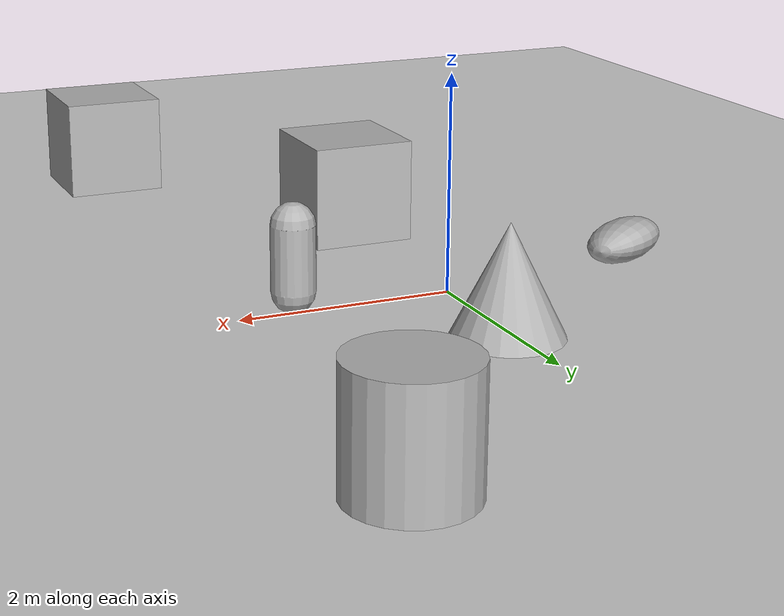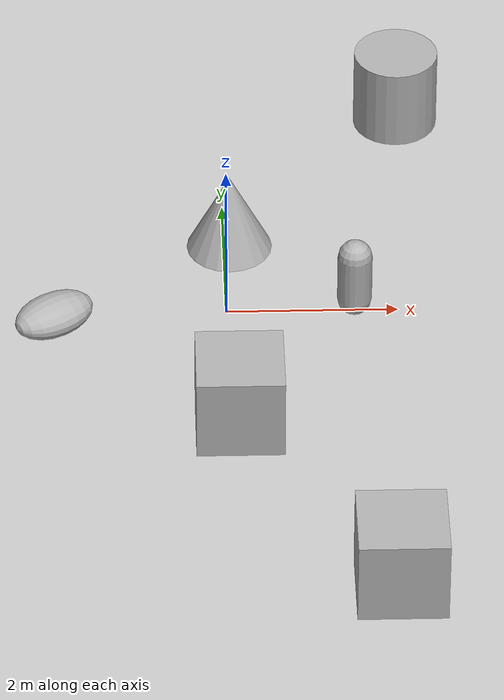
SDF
<sdf version="1.10">
 <world name="empty">
  <physics name="1ms" type="ignored">
   <max_step_size>0.001</max_step_size>
   <real_time_factor>1</real_time_factor>
   <real_time_update_rate>1000</real_time_update_rate>
  </physics>
  <plugin name="gz::sim::systems::Physics" filename="gz-sim-physics-system"/>
  <plugin name="gz::sim::systems::UserCommands" filename="gz-sim-user-commands-system"/>
  <plugin name="gz::sim::systems::SceneBroadcaster" filename="gz-sim-scene-broadcaster-system"/>
  <plugin name="gz::sim::systems::Sensors" filename="gz-sim-sensors-system">
   <render_engine>ogre2</render_engine>
  </plugin>
  <plugin name="gz::sim::systems::Contact" filename="gz-sim-contact-system"/>
  <gravity>0 0 -9.8000000000000007</gravity>
  <magnetic_field>5.5644999999999998e-06 2.2875799999999999e-05 -4.2388400000000002e-05</magnetic_field>
  <atmosphere type="adiabatic"/>
  <scene>
   <ambient>0.400000006 0.400000006 0.400000006 1</ambient>
   <background>0.699999988 0.699999988 0.699999988 1</background>
   <shadows>true</shadows>
  </scene>
  <model name="ground_plane">
   <static>true</static>
   <link name="link">
    <collision name="collision">
     <geometry><plane><normal>0 0 1</normal><size>100 100</size></plane></geometry>
    </collision>
    <visual name="visual">
     <geometry><plane><normal>0 0 1</normal><size>100 100</size></plane></geometry>
     <material>
      <ambient>0.800000012 0.800000012 0.800000012 1</ambient>
      <diffuse>0.800000012 0.800000012 0.800000012 1</diffuse>
      <specular>0.800000012 0.800000012 0.800000012 1</specular>
     </material>
    </visual>
    <inertial>
     <mass>1</mass>
     <inertia><ixx>1</ixx><ixy>0</ixy><ixz>0</ixz><iyy>1</iyy><iyz>0</iyz><izz>1</izz></inertia>
    </inertial>
   </link>
  </model>
  <model name="box">
   <pose>1.8029219467110664 -4.9402323017846799 0.49999999980497606 1.0048033485058014e-21 -2.4640853465547739e-21 -3.9210766489770922e-22</pose>
   <link name="box_link">
    <inertial>
     <inertia><ixx>0.16666</ixx><ixy>0</ixy><ixz>0</ixz><iyy>0.16666</iyy><iyz>0</iyz><izz>0.16666</izz></inertia>
     <mass>1</mass>
    </inertial>
    <collision name="box_collision"><geometry><box><size>1 1 1</size></box></geometry></collision>
    <visual name="box_visual">
     <geometry><box><size>1 1 1</size></box></geometry>
     <material>
      <ambient>0.300000012 0.300000012 0.300000012 1</ambient>
      <diffuse>0.699999988 0.699999988 0.699999988 1</diffuse>
      <specular>1 1 1 1</specular>
     </material>
    </visual>
   </link>
   <static>false</static>
  </model>
  <model name="cylinder">
   <pose>2.1278173043812618 3.7029515542140965 0.49999943207967634 2.5210160480119534e-20 1.5537065464925922e-20 -8.8626556358186986e-21</pose>
   <link name="cylinder_link">
    <inertial>
     <inertia>
      <ixx>0.14580000000000001</ixx>
      <ixy>0</ixy>
      <ixz>0</ixz>
      <iyy>0.14580000000000001</iyy>
      <iyz>0</iyz>
      <izz>0.125</izz>
     </inertia>
     <mass>1</mass>
    </inertial>
    <collision name="cylinder_collision">
     <geometry><cylinder><radius>0.5</radius><length>1</length></cylinder></geometry>
    </collision>
    <visual name="cylinder_visual">
     <geometry><cylinder><radius>0.5</radius><length>1</length></cylinder></geometry>
     <material>
      <ambient>0.300000012 0.300000012 0.300000012 1</ambient>
      <diffuse>0.699999988 0.699999988 0.699999988 1</diffuse>
      <specular>1 1 1 1</specular>
     </material>
    </visual>
   </link>
   <static>false</static>
  </model>
  <model name="capsule">
   <pose>1.4889629567022631 -0.016260769378073903 0.499999999902001 0 0 0</pose>
   <link name="capsule_link">
    <inertial>
     <inertia>
      <ixx>0.074153999999999998</ixx>
      <ixy>0</ixy>
      <ixz>0</ixz>
      <iyy>0.074153999999999998</iyy>
      <iyz>0</iyz>
      <izz>0.018769000000000001</izz>
     </inertia>
     <mass>1</mass>
    </inertial>
    <collision name="capsule_collision">
     <geometry>
      <capsule><radius>0.20000000000000001</radius><length>0.59999999999999998</length></capsule>
     </geometry>
    </collision>
    <visual name="capsule_visual">
     <geometry>
      <capsule><radius>0.20000000000000001</radius><length>0.59999999999999998</length></capsule>
     </geometry>
     <material>
      <ambient>0.300000012 0.300000012 0.300000012 1</ambient>
      <diffuse>0.699999988 0.699999988 0.699999988 1</diffuse>
      <specular>1 1 1 1</specular>
     </material>
    </visual>
   </link>
   <static>false</static>
  </model>
  <model name="ellipsoid">
   <pose>-1.9961648465274087 -0.2367798782493678 0.18666847033626374 1.5707963024872722 -1.3774875554971959 -0.98880299540200411</pose>
   <link name="ellipsoid_link">
    <inertial>
     <inertia>
      <ixx>0.068000000000000005</ixx>
      <ixy>0</ixy>
      <ixz>0</ixz>
      <iyy>0.058000000000000003</iyy>
      <iyz>0</iyz>
      <izz>0.025999999999999999</izz>
     </inertia>
     <mass>1</mass>
    </inertial>
    <collision name="ellipsoid_collision">
     <geometry><ellipsoid><radii>0.20000000000000001 0.29999999999999999 0.5</radii></ellipsoid></geometry>
    </collision>
    <visual name="ellipsoid_visual">
     <geometry><ellipsoid><radii>0.20000000000000001 0.29999999999999999 0.5</radii></ellipsoid></geometry>
     <material>
      <ambient>0.300000012 0.300000012 0.300000012 1</ambient>
      <diffuse>0.699999988 0.699999988 0.699999988 1</diffuse>
      <specular>1 1 1 1</specular>
     </material>
    </visual>
   </link>
   <static>false</static>
  </model>
  <model name="cone">
   <pose>0.066472085346534773 1.2560867504425819 0.49999999993296756 5.2543141933792029e-17 -7.7132841034784673e-10 -2.4460904633187731e-23</pose>
   <link name="cone_link">
    <inertial>
     <inertia>
      <ixx>0.074999999999999997</ixx>
      <ixy>0</ixy>
      <ixz>0</ixz>
      <iyy>0.074999999999999997</iyy>
      <iyz>0</iyz>
      <izz>0.074999999999999997</izz>
     </inertia>
     <mass>1</mass>
    </inertial>
    <collision name="cone_collision">
     <geometry><cone><radius>0.5</radius><length>1</length></cone></geometry>
    </collision>
    <visual name="cone_visual">
     <geometry><cone><radius>0.5</radius><length>1</length></cone></geometry>
     <material>
      <ambient>0.300000012 0.300000012 0.300000012 1</ambient>
      <diffuse>0.699999988 0.699999988 0.699999988 1</diffuse>
      <specular>1 1 1 1</specular>
     </material>
    </visual>
   </link>
   <static>false</static>
  </model>
  <model name="box_0">
   <pose>0.10562179839514219 -2.1116922757318903 0.49999999990199806 6.2287739151293738e-22 9.3279666454713669e-22 -3.6315533669320137e-22</pose>
   <link name="box_link">
    <inertial>
     <inertia><ixx>0.16666</ixx><ixy>0</ixy><ixz>0</ixz><iyy>0.16666</iyy><iyz>0</iyz><izz>0.16666</izz></inertia>
     <mass>1</mass>
    </inertial>
    <collision name="box_collision"><geometry><box><size>1 1 1</size></box></geometry></collision>
    <visual name="box_visual">
     <geometry><box><size>1 1 1</size></box></geometry>
     <material>
      <ambient>0.300000012 0.300000012 0.300000012 1</ambient>
      <diffuse>0.699999988 0.699999988 0.699999988 1</diffuse>
      <specular>1 1 1 1</specular>
     </material>
    </visual>
   </link>
   <static>false</static>
  </model>
  <light name="sun" type="directional">
   <pose>0 0 10 0 0 0</pose>
   <intensity>1</intensity>
   <direction>-0.5 0.10000000000000001 -0.90000000000000002</direction>
   <diffuse>0.800000012 0.800000012 0.800000012 1</diffuse>
   <specular>0.200000003 0.200000003 0.200000003 1</specular>
   <attenuation>
    <range>1000</range>
    <linear>0.01</linear>
    <constant>0.90000000000000002</constant>
    <quadratic>0.001</quadratic>
   </attenuation>
   <spot><inner_angle>0</inner_angle><outer_angle>0</outer_angle><falloff>0</falloff></spot>
  </light>
 </world>
</sdf>
